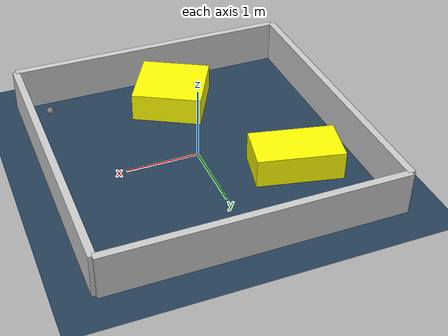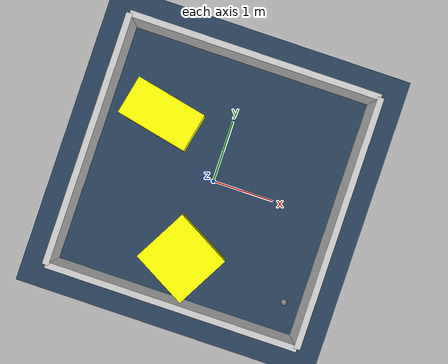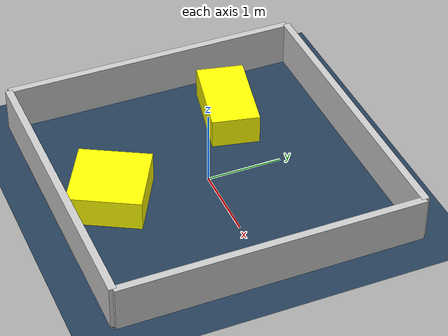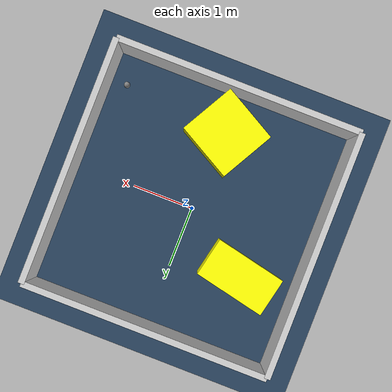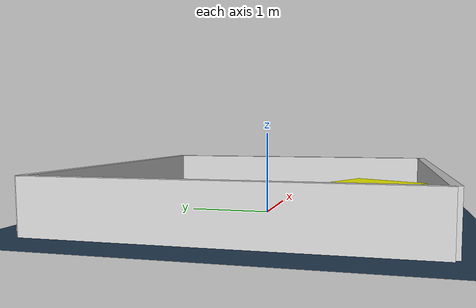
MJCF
<?xml version="1.0" ?>
<mujoco model="generated_environment">
  <option timestep="0.01" integrator="RK4" cone="elliptic"/>
  <default>
    <geom density="1"/>
  </default>
  <asset>
    <texture builtin="gradient" height="3072" rgb1="0.3 0.5 0.7" rgb2="0 0 0" type="skybox" width="512"/>
    <texture builtin="checker" height="300" mark="edge" markrgb="0.8 0.8 0.8" name="groundplane" rgb1="0.2 0.3 0.4" rgb2="0.1 0.2 0.3" type="2d" width="300"/>
    <material name="groundplane" reflectance="0.2" texrepeat="5 5" texture="groundplane" texuniform="true"/>
    <material name="robot" rgba="0.0 1.0 0.0 1"/>
  </asset>
  <worldbody>
    <light dir="0 0 -1" directional="true" pos="0 0 1.5"/>
    <geom condim="4" friction="1.0 0.005 0.001" material="groundplane" name="floor" size="0 0 0.05" type="plane"/>
    <body name="walls">
      <geom name="wall_1" condim="4" pos="-2.0 0.0 0.3" rgba="0.800000011920929 0.800000011920929 0.800000011920929 1.0" size="0.05 2.0 0.3" type="box"/>
      <geom name="wall_2" condim="4" pos="2.0 0.0 0.3" rgba="0.800000011920929 0.800000011920929 0.800000011920929 1.0" size="0.05 2.0 0.3" type="box"/>
      <geom name="wall_3" condim="4" pos="0.0 -2.0 0.3" rgba="0.800000011920929 0.800000011920929 0.800000011920929 1.0" size="2.0 0.05 0.3" type="box"/>
      <geom name="wall_4" condim="4" pos="0.0 2.0 0.3" rgba="0.800000011920929 0.800000011920929 0.800000011920929 1.0" size="2.0 0.05 0.3" type="box"/>
    </body>
    <body name="robot">
      <joint name="joint_x" type="slide" pos="0 0 0" axis="1 0 0"/>
      <joint name="joint_y" type="slide" pos="0 0 0" axis="0 1 0"/>
      <geom name="robot" type="sphere" pos="1.6653583192778707 -1.4551033310000419 0.2" size="0.05" mass="5." friction="1.0 0.005 0.0001" condim="4"/>
      <site name="sensor_ball"/>
    </body>
    <body name="obstacle_1_movable">
      <geom name="obstacle_1_movable" condim="4" pos="-0.08868806550180475 -1.2939828102286661 0.2" euler="0 0 331.06202284053325" friction="1.0 0.005 0.001" rgba="1 1 0 1" size="0.4907578347418019 0.47626167021651306 0.2" type="box" mass="0.1"/>
      <joint type="free"/>
    </body>
    <body name="obstacle_2_movable">
      <geom name="obstacle_2_movable" condim="4" pos="-1.0899182504276337 0.7303915580407412 0.2" euler="0 0 257.7518018195329" friction="1.0 0.005 0.001" rgba="1 1 0 1" size="0.3198725667320071 0.5867879323807368 0.2" type="box" mass="0.1"/>
      <joint type="free"/>
    </body>
  </worldbody>
  <actuator>
    <motor name="actuator_x" joint="joint_x" gear="1" ctrlrange="-1 1"/>
    <motor name="actuator_y" joint="joint_y" gear="1" ctrlrange="-1 1"/>
  </actuator>
</mujoco>
